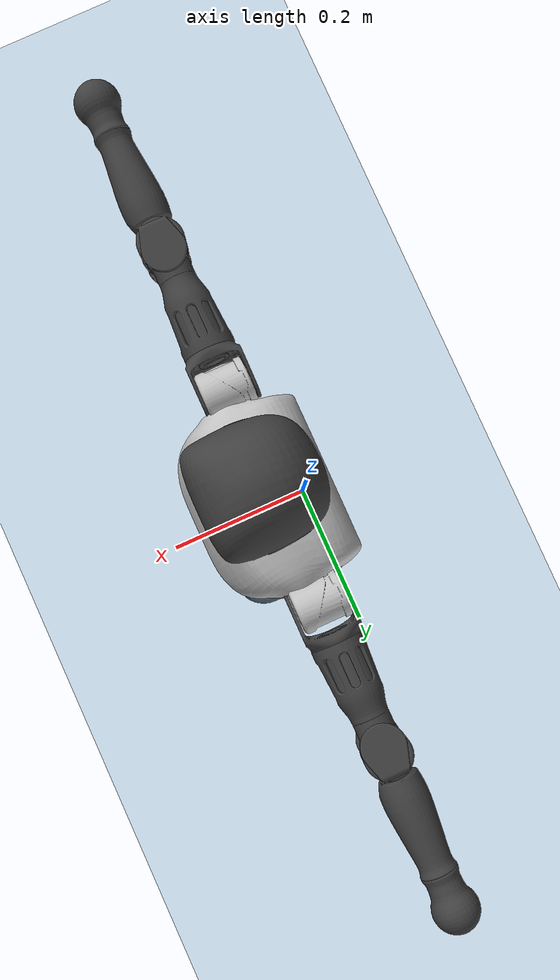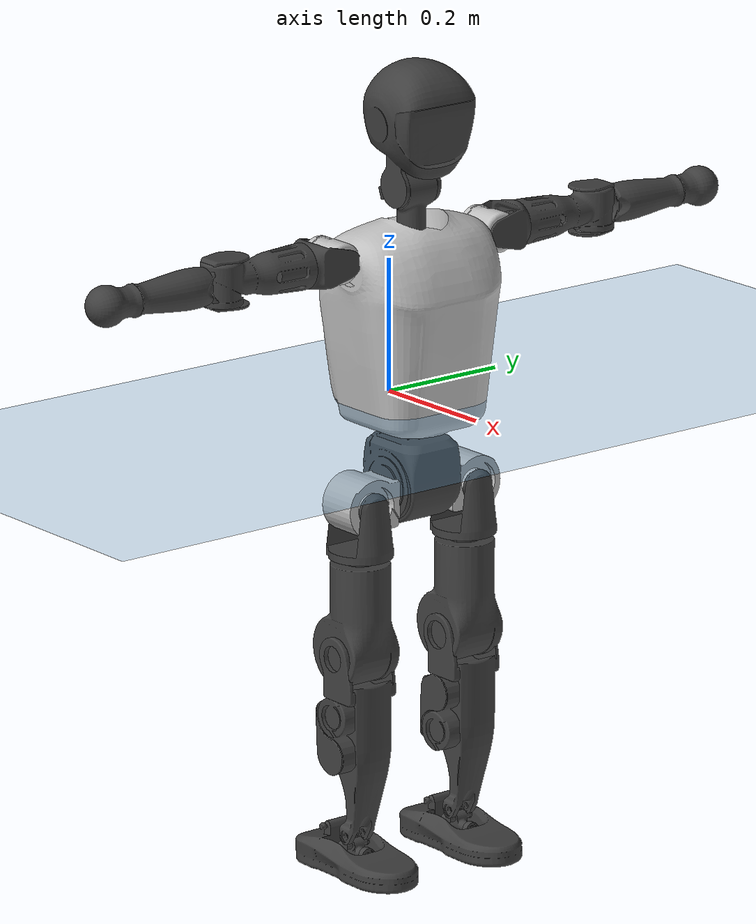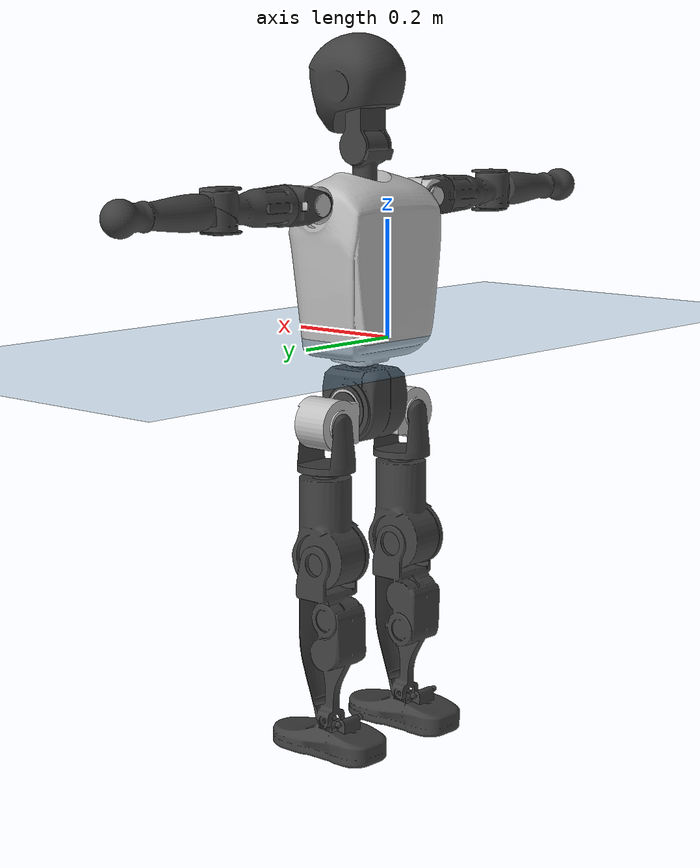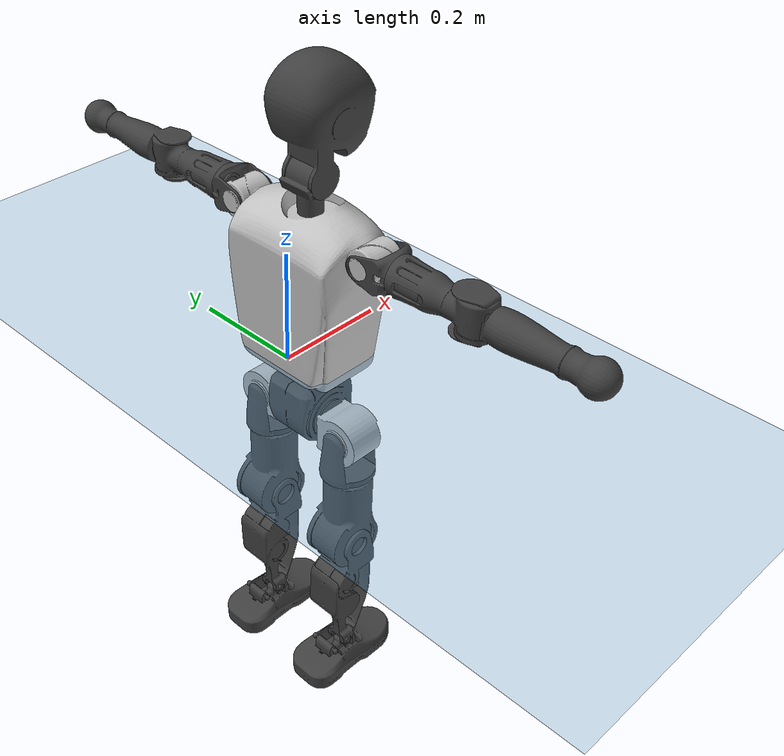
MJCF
<mujoco model="T1">
  <compiler angle="radian" assetdir="assets" balanceinertia="true" inertiafromgeom="false"/>

  <option timestep="0.005" density="1.2" viscosity="2e-05"/>

  <size nkey="1"/>

  <visual>
    <quality shadowsize="8192"/>
    <map shadowclip="0.5"/>
  </visual>

  <default>
    <default class="/">
      <joint armature="0.01" damping="0.01" frictionloss="0.1"/>
      <geom contype="0" conaffinity="0" group="1" solref="-1000 -80"/>
      <site size="0.01 0.005 0.005" group="5"/>
      <general forcelimited="true" biastype="affine" gainprm="25" biasprm="0 -25 -0.6"/>
      <default class="t1">
        <geom rgba="0.25 0.25 0.25 1"/>
        <default class="visual">
          <geom type="mesh" group="2"/>
        </default>
        <default class="collision">
          <geom group="3"/>
        </default>
        <default class="foot">
          <geom size="0.1115 0.05 0.015" type="box" condim="6" group="4" priority="1" solimp="0.015 1 0.015"/>
        </default>
        <default class="reward_collision_sphere">
          <geom group="5" rgba="1 0 0 1"/>
        </default>
      </default>
    </default>
  </default>

  <asset>
    <texture type="skybox" colorspace="auto" name="//unnamed_texture_0" builtin="gradient" rgb1="0.95 0.95 0.95" rgb2="0.95 0.95 0.95" width="100" height="600"/>
    <texture type="2d" colorspace="auto" name="texplane" builtin="checker" rgb1="0.345 0.575 0.748" rgb2="0.345 0.575 0.748" markrgb="1 1 1" width="512" height="512"/>
    <material name="MatPlane" class="/" texture="texplane" texuniform="true" texrepeat="2 2" specular="0.9"/>
    <mesh name="Trunk" class="/" file="Trunk.stl"/>
    <mesh name="H1" class="/" file="H1.stl"/>
    <mesh name="H2" class="/" file="H2.stl"/>
    <mesh name="AL1" class="/" file="AL1.stl"/>
    <mesh name="AL2" class="/" file="AL2.stl"/>
    <mesh name="AL3" class="/" file="AL3.stl"/>
    <mesh name="left_hand_link" class="/" file="left_hand_link.stl"/>
    <mesh name="AR1" class="/" file="AR1.stl"/>
    <mesh name="AR2" class="/" file="AR2.stl"/>
    <mesh name="AR3" class="/" file="AR3.stl"/>
    <mesh name="right_hand_link" class="/" file="right_hand_link.stl"/>
    <mesh name="Waist" class="/" file="Waist.stl"/>
    <mesh name="Hip_Pitch_Left" class="/" file="Hip_Pitch_Left.stl"/>
    <mesh name="Hip_Roll_Left" class="/" file="Hip_Roll_Left.stl"/>
    <mesh name="Hip_Yaw_Left" class="/" file="Hip_Yaw_Left.stl"/>
    <mesh name="Shank_Left" class="/" file="Shank_Left.stl"/>
    <mesh name="Ankle_Cross_Left" class="/" file="Ankle_Cross_Left.stl"/>
    <mesh name="left_foot_link" class="/" file="left_foot_link.stl"/>
    <mesh name="Hip_Pitch_Right" class="/" file="Hip_Pitch_Right.stl"/>
    <mesh name="Hip_Roll_Right" class="/" file="Hip_Roll_Right.stl"/>
    <mesh name="Hip_Yaw_Right" class="/" file="Hip_Yaw_Right.stl"/>
    <mesh name="Shank_Right" class="/" file="Shank_Right.stl"/>
    <mesh name="Ankle_Cross_Right" class="/" file="Ankle_Cross_Right.stl"/>
    <mesh name="right_foot_link" class="/" file="right_foot_link.stl"/>
  </asset>

  <worldbody>
    <geom name="floor" class="/" size="100 100 0.125" type="plane" group="0" material="MatPlane"/>
    <light name="toplight_shadow" class="/" pos="0 0 5" dir="0.0990148 0.0990148 -0.990148" type="directional" ambient="0.04 0.04 0.04" diffuse="0.55 0.55 0.55" specular="0.12 0.12 0.12"/>
    <light name="toplight_fill" class="/" pos="0 0 5" dir="0.0990148 0.0990148 -0.990148" type="directional" castshadow="false" ambient="0.04 0.04 0.04" diffuse="0.3 0.3 0.3" specular="0.08 0.08 0.08"/>
    <body name="trunk" childclass="t1" pos="0.000437275 0.000131643 -0.000656275" quat="1 1.1738e-05 3.93694e-07 -5.83429e-06">
      <inertial pos="0.0449378 -0.000111467 0.110462" quat="0.999959 2.39948e-05 -0.00906392 3.57029e-05" mass="9.47564" diaginertia="0.0357682 0.0494036 0.0739081"/>
      <joint name="//unnamed_joint_0" type="free" armature="0" damping="0" frictionloss="0"/>
      <geom name="//unnamed_geom_1" class="visual" rgba="0.76 0.76 0.76 1" mesh="Trunk"/>
      <geom name="//unnamed_geom_2" class="collision" size="0.0698777 0.0931702 0.139755" pos="0.0496508 0 0.126659" type="box"/>
      <geom name="//unnamed_geom_3" class="reward_collision_sphere" size="0.107146" pos="0.0496508 0 0.105549"/>
      <geom name="//unnamed_geom_4" class="reward_collision_sphere" size="0.0139755" pos="0.0496508 0.0775288 0"/>
      <geom name="//unnamed_geom_5" class="reward_collision_sphere" size="0.0139755" pos="0.0496508 -0.0775288 0"/>
      <geom name="//unnamed_geom_6" class="reward_collision_sphere" size="0.0139755" pos="0.0496508 0.0975951 0.189988"/>
      <geom name="//unnamed_geom_7" class="reward_collision_sphere" size="0.0139755" pos="0.0496508 -0.0975951 0.189988"/>
      <site name="imu" pos="-0.00327878 -0.000978352 0.00141625" size="0.00931702"/>
      <camera name="track" pos="0 -1.82421 0" quat="0.707107 0.707107 0 0" mode="trackcom"/>
      <camera name="ego_camera" pos="0.100957 0 0.443306" quat="-0.5 -0.5 0.5 0.5"/>
      <body name="H1" pos="0.0509834 -0.000350904 0.257047" quat="1 2.15429e-05 -2.76015e-05 7.14739e-07">
        <inertial pos="-0.000872372 -0.00197685 0.0599574" quat="0.762386 -0.015986 -0.00184095 0.646922" mass="0.360767" diaginertia="9.50776e-05 0.000141163 0.000198719"/>
        <joint name="AAHead_yaw" pos="0 0 0" axis="0.000102315 -0.0019173 0.999998" stiffness="7.98744e-06" range="-1.55896 1.58034" armature="0.00950689" damping="0.00553207" frictionloss="0.0978564"/>
        <geom name="//unnamed_geom_8" class="visual" mesh="H1"/>
        <body name="H2" pos="-0.00050306 -0.000165843 0.0643891" quat="1 3.35561e-07 4.032e-07 -1.17366e-06">
          <inertial pos="0.00606777 0.00105333 0.104147" quat="0.988793 0.10512 -0.0739768 -0.0759372" mass="0.511295" diaginertia="0.000799317 0.00121019 0.00227291"/>
          <joint name="Head_pitch" pos="0 0 0" axis="-0.00189543 -0.999997 -0.00138416" range="-1.21756 0.348758" armature="0.00910658" damping="0.00680736" frictionloss="0.0919105"/>
          <geom name="//unnamed_geom_9" class="visual" mesh="H2"/>
          <geom name="//unnamed_geom_10" class="collision" size="0.0745362" pos="0.00827513 0 0.116104"/>
          <geom name="//unnamed_geom_11" class="reward_collision_sphere" size="0.0838532" pos="0.0165503 0 0.105549"/>
        </body>
      </body>
      <body name="AL1" pos="0.0487489 0.0980445 0.231278" quat="1 6.27246e-06 0.000440908 -5.59411e-06">
        <inertial pos="0.00022521 0.0408682 0.000216358" quat="0.506872 0.496932 -0.502196 0.493902" mass="0.426782" diaginertia="0.000532002 0.000809466 0.000383089"/>
        <joint name="Left_Shoulder_Pitch" pos="0 0 0" axis="0.00241399 0.999994 0.00244486" range="-3.30761 1.20981" armature="0.00935956" damping="0.00796699" frictionloss="0.0910719"/>
        <geom name="//unnamed_geom_12" class="visual" rgba="0.76 0.76 0.76 1" mesh="AL1"/>
        <body name="AL2" pos="0.00117603 0.0436088 0.000768952" quat="1 1.91138e-05 -5.53201e-05 4.05298e-05">
          <inertial pos="0.00264332 0.0354371 -9.40203e-05" quat="0.48809 0.512266 -0.488066 0.511022" mass="0.128823" diaginertia="0.000154958 0.000218904 0.000229852"/>
          <joint name="Left_Shoulder_Roll" pos="0 0 0" axis="-0.999998 -0.0010593 0.00151945" range="-1.55803 1.72228" armature="0.00926633" damping="0.00444531" frictionloss="0.0925471"/>
          <geom name="//unnamed_geom_13" class="visual" mesh="AL2"/>
          <body name="AL3" pos="0.000468742 0.0553201 -0.00020883" quat="1 -0.000187502 -3.77784e-05 -8.86084e-05">
            <inertial pos="-0.000990184 0.0775295 -0.000140894" quat="0.70672 0.70749 -0.00108012 -0.00197551" mass="0.816372" diaginertia="0.00493613 0.00804182 0.000810011"/>
            <joint name="Left_Elbow_Pitch" pos="0 0 0" axis="0.00136947 -0.999999 0.000512689" range="-2.27818 2.26955" armature="0.00969087" damping="0.00982059" frictionloss="0.0908801"/>
            <geom name="//unnamed_geom_14" class="visual" mesh="AL3"/>
            <geom name="//unnamed_geom_15" class="collision" size="0.0279511 0.0698777" pos="0 0.0456052 0" quat="0.707105 0.707108 0 0" type="cylinder"/>
            <geom name="//unnamed_geom_16" class="reward_collision_sphere" size="0.0335413"/>
            <body name="left_hand_link" pos="0.00118243 0.134277 5.22521e-05" quat="1 3.66616e-06 2.78941e-05 -2.73163e-05">
              <inertial pos="-0.000104979 0.10082 -0.000429263" quat="0.706848 0.707353 0.00404268 -0.000872328" mass="0.263258" diaginertia="0.0031435 0.00514128 0.000280906"/>
              <joint name="Left_Elbow_Yaw" pos="0 0 0" axis="-0.00411548 -0.000440074 0.999991" range="-2.45353 0.01004" armature="0.00928004" damping="0.0107636" frictionloss="0.0921809"/>
              <geom name="//unnamed_geom_17" class="visual" mesh="left_hand_link"/>
              <geom name="//unnamed_geom_18" class="collision" size="0.0279511 0.0815239" pos="0 0.118573 0" quat="0.707105 0.707108 0 0" type="cylinder"/>
              <geom name="//unnamed_geom_19" class="reward_collision_sphere" size="0.0465851"/>
              <geom name="//unnamed_geom_20" class="reward_collision_sphere" size="0.0326096" pos="0 0.100331 0"/>
              <geom name="//unnamed_geom_21" class="reward_collision_sphere" size="0.0326096" pos="0 0.196102 0"/>
            </body>
          </body>
        </body>
      </body>
      <body name="AR1" pos="0.0462036 -0.0965308 0.231357" quat="1 -0.000173308 0.000376392 -0.000182966">
        <inertial pos="-0.00132932 -0.0411666 0.000528418" quat="0.502839 0.496944 -0.503923 0.496247" mass="0.433046" diaginertia="0.000535323 0.000820826 0.000387376"/>
        <joint name="Right_Shoulder_Pitch" pos="0 0 0" axis="-5.19619e-06 -1 1.61783e-05" range="-1.23646 3.31552" armature="0.00921404" damping="0.00445201" frictionloss="0.0906914"/>
        <geom name="//unnamed_geom_22" class="visual" rgba="0.76 0.76 0.76 1" mesh="AR1"/>
        <body name="AR2" pos="-0.000710828 -0.0412412 -0.000239197" quat="1 -0.000257482 0.000362744 0.000369487">
          <inertial pos="0.00402533 -0.0344925 0.00130246" quat="0.510746 0.485042 -0.51316 0.490448" mass="0.131934" diaginertia="0.000157855 0.000221762 0.000231417"/>
          <joint name="Right_Shoulder_Roll" pos="0 0 0" axis="-0.999996 0.00234272 -0.00184242" stiffness="0.00339552" range="-1.73549 1.57694" armature="0.0092047" damping="0.00577545" frictionloss="0.0915824"/>
          <geom name="//unnamed_geom_23" class="visual" mesh="AR2"/>
          <body name="AR3" pos="-0.000321744 -0.0551899 -0.000174715" quat="1 -7.9969e-06 5.69191e-05 0.000211402">
            <inertial pos="0.000489972 -0.0781843 7.34645e-05" quat="0.70772 0.706492 0.0006532 -0.000355815" mass="0.832914" diaginertia="0.00501948 0.00816087 0.000824612"/>
            <joint name="Right_Elbow_Pitch" pos="0 0 0" axis="0.000599842 1 0.000211487" stiffness="0.00217976" range="-2.28133 2.2647" armature="0.0092714" damping="0.00911564" frictionloss="0.0978494"/>
            <geom name="//unnamed_geom_24" class="visual" mesh="AR3"/>
            <geom name="//unnamed_geom_25" class="collision" size="0.0279511 0.0698777" pos="0 -0.0456052 0" quat="0.707105 0.707108 0 0" type="cylinder"/>
            <geom name="//unnamed_geom_26" class="reward_collision_sphere" size="0.0335413"/>
            <body name="right_hand_link" pos="0.000409484 -0.133434 0.000239824" quat="1 3.05854e-05 -0.000111178 -7.48821e-05">
              <inertial pos="-0.000268052 -0.0998231 0.000447564" quat="0.706461 0.707752 5.19863e-05 0.0001847" mass="0.268309" diaginertia="0.00318967 0.005172 0.000286259"/>
              <joint name="Right_Elbow_Yaw" pos="0 0 0" axis="-0.000987331 0.000211316 0.999999" range="-0.0030151 2.44002" armature="0.00960136" damping="0.005178" frictionloss="0.0890151"/>
              <geom name="//unnamed_geom_27" class="visual" mesh="right_hand_link"/>
              <geom name="//unnamed_geom_28" class="collision" size="0.0279511 0.0815239" pos="0 -0.118573 0" quat="0.707105 0.707108 0 0" type="cylinder"/>
              <geom name="//unnamed_geom_29" class="reward_collision_sphere" size="0.0465851"/>
              <geom name="//unnamed_geom_30" class="reward_collision_sphere" size="0.0326096" pos="0 -0.100331 0"/>
              <geom name="//unnamed_geom_31" class="reward_collision_sphere" size="0.0326096" pos="0 -0.196102 0"/>
            </body>
          </body>
        </body>
      </body>
      <body name="Waist" pos="0.0516435 -1.43135e-05 -0.121343" quat="1 0.00018383 -5.89789e-05 -0.000152281">
        <inertial pos="0.00144511 -0.00124348 0.00865457" quat="0.983818 -0.00102145 -0.179167 0.000409556" mass="2.08027" diaginertia="0.0020846 0.0033366 0.0061721"/>
        <joint name="Waist" pos="0 0 0" axis="-0.000814477 -0.00457681 0.999989" range="-1.57133 1.57979" armature="0.00936979" damping="0.0100281" frictionloss="0.0939877"/>
        <geom name="//unnamed_geom_32" class="visual" mesh="Waist"/>
        <body name="Hip_Pitch_Left" pos="0.000511688 0.0968534 0.000736136" quat="1 -0.000102001 -0.000272619 -0.000291166">
          <inertial pos="0.00110688 -0.0072071 -0.0193805" quat="0.97511 0.221232 0.0146425 0.00155301" mass="0.815221" diaginertia="0.00069173 0.000904856 0.00162019"/>
          <joint name="Left_Hip_Pitch" pos="0 0 0" axis="0.00585164 0.999983 -0.000436403" range="-1.80951 1.56135" armature="0.00890617" damping="0.00718977" frictionloss="0.0917551"/>
          <geom name="//unnamed_geom_33" class="visual" rgba="0.76 0.76 0.76 1" mesh="Hip_Pitch_Left"/>
          <body name="Hip_Roll_Left" pos="0.00097009 0.000719073 -0.0231166" quat="1 -0.000160461 0.000125854 -9.96156e-05">
            <inertial pos="0.00113761 -0.000782801 -0.0559453" quat="0.70701 -0.00606506 -0.00629457 0.707149" mass="0.314179" diaginertia="0.000682236 0.000958871 0.000688141"/>
            <joint name="Left_Hip_Roll" pos="0 0 0" axis="-0.999984 0.00107633 -0.00559819" range="-1.57899 0.185404" armature="0.00951878" damping="0.00312247" frictionloss="0.0905191"/>
            <geom name="//unnamed_geom_34" class="visual" mesh="Hip_Roll_Left"/>
            <geom name="//unnamed_geom_35" class="reward_collision_sphere" size="0.0512436"/>
            <body name="Hip_Yaw_Left" pos="-0.000398816 0.000585422 -0.0876673" quat="1 0.000236258 9.96908e-05 0.000385407">
              <inertial pos="-0.00520526 -0.000142471 -0.0936073" quat="0.696717 -0.0343713 -0.0317325 0.715819" mass="1.76037" diaginertia="0.0100699 0.0157933 0.00337246"/>
              <joint name="Left_Hip_Yaw" pos="0 0 0" axis="0.000566355 -0.0024148 -0.999997" range="-1.0221 0.999798" armature="0.00926646" damping="0.00778775" frictionloss="0.0933773"/>
              <geom name="//unnamed_geom_36" class="visual" mesh="Hip_Yaw_Left"/>
              <geom name="//unnamed_geom_37" class="collision" size="0.0465851 0.0745362" type="cylinder"/>
              <body name="Shank_Left" pos="-0.0119182 -3.70776e-06 -0.144206" quat="1 -9.4414e-07 -8.23341e-06 -1.00275e-05">
                <inertial pos="-0.00436485 0.000804224 -0.13151" quat="0.997363 -0.00174668 -0.0260825 0.0677032" mass="1.40538" diaginertia="0.0134025 0.0217339 0.00246311"/>
                <joint name="Left_Knee_Pitch" pos="0 0 0" axis="0.00422053 0.99999 0.00127906" range="-0.000375993 2.35761" armature="0.00892331" damping="0.0119777" frictionloss="0.0946753"/>
                <geom name="//unnamed_geom_38" class="visual" mesh="Shank_Left"/>
                <geom name="//unnamed_geom_39" class="collision" size="0.0465851 0.0698777" pos="0 0 -0.126659" type="cylinder"/>
                <geom name="//unnamed_geom_40" class="reward_collision_sphere" size="0.0605606"/>
                <body name="Ankle_Cross_Left" pos="-0.000542033 -0.000117399 -0.29468" quat="1 0.000314719 -0.000115536 0.000377316">
                  <inertial pos="-0.00387279 0.000754561 -0.00932737" quat="0.443131 0.551114 0.551684 0.442213" mass="0.0593247" diaginertia="1.14001e-05 1.62162e-05 1.47977e-05"/>
                  <joint name="Left_Ankle_Pitch" pos="0 0 0" axis="-1.8447e-05 1 -6.61962e-06" range="-0.872398 0.347361" armature="0.00976236" damping="0.00758296" frictionloss="0.0917379"/>
                  <geom name="//unnamed_geom_41" class="visual" mesh="Ankle_Cross_Left"/>
                  <body name="left_foot_link" pos="0.00031056 0.000574568 -0.0126331" quat="1 -0.000259622 -0.000232451 0.00029686">
                    <inertial pos="0.000453024 0.000991966 -0.0100165" quat="0.000515382 0.620676 -0.000774151 0.784067" mass="0.557706" diaginertia="0.00106696 0.0015191 0.00289312"/>
                    <joint name="Left_Ankle_Roll" pos="0 0 0" axis="-0.99997 -0.00233479 0.00738397" range="-0.439289 0.422987" armature="0.00927391" damping="0.00985438" frictionloss="0.0912521"/>
                    <geom name="//unnamed_geom_42" class="visual" mesh="left_foot_link"/>
                    <geom name="left_foot" class="foot" size="0.100988 0.0477531 0.0137089" pos="0.00827513 0 -0.0158323"/>
                    <geom name="//unnamed_geom_44" class="reward_collision_sphere" size="0.0484485" pos="0.00827513 0 -0.0158323"/>
                    <geom name="//unnamed_geom_45" class="reward_collision_sphere" size="0.0279511" pos="0.0786137 -0.0209784 -0.0158323"/>
                    <geom name="//unnamed_geom_46" class="reward_collision_sphere" size="0.0279511" pos="-0.0579259 -0.0209784 -0.0158323"/>
                    <site name="left_foot" class="foot" pos="0.00827513 0 -0.0158323" size="0.00931702"/>
                  </body>
                </body>
              </body>
            </body>
          </body>
        </body>
        <body name="Hip_Pitch_Right" pos="0.000617526 -0.0958613 -0.000932888" quat="1 1.02948e-05 -0.00018344 -7.23212e-05">
          <inertial pos="-1.43302e-05 0.00688481 -0.0187746" quat="0.973663 -0.227504 0.0143347 -0.0042009" mass="0.824045" diaginertia="0.000695157 0.000915049 0.0016218"/>
          <joint name="Right_Hip_Pitch" pos="0 0 0" axis="0.00124005 -0.999999 -3.46046e-05" range="-1.57985 1.81691" armature="0.00950351" damping="0.00418476" frictionloss="0.0909203"/>
          <geom name="//unnamed_geom_47" class="visual" rgba="0.76 0.76 0.76 1" mesh="Hip_Pitch_Right"/>
          <body name="Hip_Roll_Right" pos="2.34377e-05 0.000101123 -0.0221363" quat="1 -0.000194715 0.000193298 3.34873e-05">
            <inertial pos="0.00194118 -0.000122513 -0.0573704" quat="0.707478 -0.00570822 -0.00538436 0.706692" mass="0.307889" diaginertia="0.000677657 0.000952193 0.000673363"/>
            <joint name="Right_Hip_Roll" pos="0 0 0" axis="-0.999997 0.00240682 -0.000316969" stiffness="0.000557239" range="-0.210513 1.56507" armature="0.0094609" damping="0.00607897" frictionloss="0.0894512"/>
            <geom name="//unnamed_geom_48" class="visual" mesh="Hip_Roll_Right"/>
            <geom name="//unnamed_geom_49" class="reward_collision_sphere" size="0.0512436"/>
            <body name="Hip_Yaw_Right" pos="-0.000643861 -0.000443959 -0.0866708" quat="1 2.21926e-05 4.97092e-05 6.24102e-05">
              <inertial pos="-0.00573558 -0.000542207 -0.095164" quat="0.714114 -0.0316418 -0.0338525 0.698494" mass="1.76271" diaginertia="0.0100886 0.0159385 0.00343681"/>
              <joint name="Right_Hip_Yaw" pos="0 0 0" axis="0.00379099 -0.00181338 -0.999991" stiffness="0.0017772" range="-1.00714 0.997751" armature="0.00950605" damping="0.0120081" frictionloss="0.0939571"/>
              <geom name="//unnamed_geom_50" class="visual" mesh="Hip_Yaw_Right"/>
              <geom name="//unnamed_geom_51" class="collision" size="0.0465851 0.0745362" type="cylinder"/>
              <body name="Shank_Right" pos="-0.0115215 -0.000623694 -0.142475" quat="1 -2.2331e-05 3.23971e-05 -2.47412e-05">
                <inertial pos="-0.00523825 0.000219046 -0.129374" quat="0.999318 -0.00184054 -0.0244046 -0.027645" mass="1.45027" diaginertia="0.0137472 0.0221518 0.0025817"/>
                <joint name="Right_Knee_Pitch" pos="0 0 0" axis="0.0021139 -0.999996 0.00188538" range="-2.34384 -0.00479552" armature="0.0091827" damping="0.00637621" frictionloss="0.0915975"/>
                <geom name="//unnamed_geom_52" class="visual" mesh="Shank_Right"/>
                <geom name="//unnamed_geom_53" class="collision" size="0.0465851 0.0698777" pos="0 0 -0.126659" type="cylinder"/>
                <geom name="//unnamed_geom_54" class="reward_collision_sphere" size="0.0605606"/>
                <body name="Ankle_Cross_Right" pos="0.00084063 -0.000250158 -0.295267" quat="1 -6.14493e-05 -6.44419e-05 -4.95796e-05">
                  <inertial pos="-0.00254992 -0.00065358 -0.00844621" quat="0.443062 0.551252 0.551013 0.442947" mass="0.0594936" diaginertia="1.12335e-05 1.63174e-05 1.48292e-05"/>
                  <joint name="Right_Ankle_Pitch" pos="0 0 0" axis="-0.000358538 -1 -0.000879283" range="-0.368039 0.880621" armature="0.00936285" damping="0.00174595" frictionloss="0.0931465"/>
                  <geom name="//unnamed_geom_55" class="visual" mesh="Ankle_Cross_Right"/>
                  <body name="right_foot_link" pos="-0.000558323 -0.00119427 -0.0103485" quat="1 -5.66227e-05 1.13628e-05 2.37564e-05">
                    <inertial pos="6.02702e-06 -0.000271093 -0.0104609" quat="7.24115e-05 0.620348 0.000667657 0.784326" mass="0.551486" diaginertia="0.00103465 0.00148523 0.0028053"/>
                    <joint name="Right_Ankle_Roll" pos="0 0 0" axis="-0.999999 0.00105803 -0.00108273" range="-0.43099 0.447072" armature="0.00878604" damping="0.000801743" frictionloss="0.0897078"/>
                    <geom name="//unnamed_geom_56" class="visual" mesh="right_foot_link"/>
                    <geom name="right_foot" class="foot" size="0.101216 0.0474035 0.0140271" pos="0.00827513 0 -0.0158323"/>
                    <geom name="//unnamed_geom_58" class="reward_collision_sphere" size="0.0372681"/>
                    <geom name="//unnamed_geom_59" class="reward_collision_sphere" size="0.0279511" pos="0.00827513 0 -0.0158323"/>
                    <geom name="//unnamed_geom_60" class="reward_collision_sphere" size="0.0279511" pos="0.0786137 0.0209784 -0.0158323"/>
                    <geom name="//unnamed_geom_61" class="reward_collision_sphere" size="0.0279511" pos="-0.0579259 0.0209784 -0.0158323"/>
                    <site name="right_foot" class="foot" pos="0.00827513 0 -0.0158323" size="0.00931702"/>
                  </body>
                </body>
              </body>
            </body>
          </body>
        </body>
      </body>
    </body>
  </worldbody>

  <contact>
    <pair class="/" geom1="floor" geom2="left_foot" name="//unnamed_contact_0"/>
    <pair class="/" geom1="floor" geom2="right_foot" name="//unnamed_contact_1"/>
  </contact>

  <actuator>
    <general name="AAHead_yaw" class="/" joint="AAHead_yaw" forcerange="-6.51461 6.51461" gainprm="23.6247" biasprm="0 -23.6247 -0.535328"/>
    <general name="Head_pitch" class="/" joint="Head_pitch" forcerange="-6.49479 6.49479" gainprm="23.6247" biasprm="0 -23.6247 -0.535328"/>
    <general name="Left_Shoulder_Pitch" class="/" joint="Left_Shoulder_Pitch" forcerange="-16.0628 16.0628" gainprm="23.6247" biasprm="0 -23.6247 -0.535328"/>
    <general name="Left_Shoulder_Roll" class="/" joint="Left_Shoulder_Roll" forcerange="-16.6716 16.6716" gainprm="23.6247" biasprm="0 -23.6247 -0.535328"/>
    <general name="Left_Elbow_Pitch" class="/" joint="Left_Elbow_Pitch" forcerange="-16.3031 16.3031" gainprm="23.6247" biasprm="0 -23.6247 -0.535328"/>
    <general name="Left_Elbow_Yaw" class="/" joint="Left_Elbow_Yaw" forcerange="-16.7651 16.7651" gainprm="23.6247" biasprm="0 -23.6247 -0.535328"/>
    <general name="Right_Shoulder_Pitch" class="/" joint="Right_Shoulder_Pitch" forcerange="-16.6136 16.6136" gainprm="23.6247" biasprm="0 -23.6247 -0.535328"/>
    <general name="Right_Shoulder_Roll" class="/" joint="Right_Shoulder_Roll" forcerange="-16.3188 16.3188" gainprm="23.6247" biasprm="0 -23.6247 -0.535328"/>
    <general name="Right_Elbow_Pitch" class="/" joint="Right_Elbow_Pitch" forcerange="-17.1369 17.1369" gainprm="23.6247" biasprm="0 -23.6247 -0.535328"/>
    <general name="Right_Elbow_Yaw" class="/" joint="Right_Elbow_Yaw" forcerange="-16.5803 16.5803" gainprm="23.6247" biasprm="0 -23.6247 -0.535328"/>
    <general name="Waist" class="/" joint="Waist" forcerange="-28.4959 28.4959" gainprm="23.6247" biasprm="0 -23.6247 -0.535328"/>
    <general name="Left_Hip_Pitch" class="/" joint="Left_Hip_Pitch" forcerange="-42.2178 42.2178" gainprm="23.6247" biasprm="0 -23.6247 -0.535328"/>
    <general name="Left_Hip_Roll" class="/" joint="Left_Hip_Roll" forcerange="-27.5595 27.5595" gainprm="23.6247" biasprm="0 -23.6247 -0.535328"/>
    <general name="Left_Hip_Yaw" class="/" joint="Left_Hip_Yaw" forcerange="-28.9278 28.9278" gainprm="23.6247" biasprm="0 -23.6247 -0.535328"/>
    <general name="Left_Knee_Pitch" class="/" joint="Left_Knee_Pitch" forcerange="-55.2882 55.2882" gainprm="23.6247" biasprm="0 -23.6247 -0.535328"/>
    <general name="Left_Ankle_Pitch" class="/" joint="Left_Ankle_Pitch" forcerange="-18.6325 18.6325" gainprm="23.6247" biasprm="0 -23.6247 -0.535328"/>
    <general name="Left_Ankle_Roll" class="/" joint="Left_Ankle_Roll" forcerange="-13.9435 13.9435" gainprm="23.6247" biasprm="0 -23.6247 -0.535328"/>
    <general name="Right_Hip_Pitch" class="/" joint="Right_Hip_Pitch" forcerange="-42.0284 42.0284" gainprm="23.6247" biasprm="0 -23.6247 -0.535328"/>
    <general name="Right_Hip_Roll" class="/" joint="Right_Hip_Roll" forcerange="-28.8148 28.8148" gainprm="23.6247" biasprm="0 -23.6247 -0.535328"/>
    <general name="Right_Hip_Yaw" class="/" joint="Right_Hip_Yaw" forcerange="-27.844 27.844" gainprm="23.6247" biasprm="0 -23.6247 -0.535328"/>
    <general name="Right_Knee_Pitch" class="/" joint="Right_Knee_Pitch" forcerange="-54.043 54.043" gainprm="23.6247" biasprm="0 -23.6247 -0.535328"/>
    <general name="Right_Ankle_Pitch" class="/" joint="Right_Ankle_Pitch" forcerange="-18.1277 18.1277" gainprm="23.6247" biasprm="0 -23.6247 -0.535328"/>
    <general name="Right_Ankle_Roll" class="/" joint="Right_Ankle_Roll" forcerange="-13.7519 13.7519" gainprm="23.6247" biasprm="0 -23.6247 -0.535328"/>
  </actuator>

  <sensor>
    <gyro site="imu" name="imu_angular_velocity"/>
    <velocimeter site="imu" name="imu_linear_velocity"/>
    <framelinvel objtype="site" objname="left_foot" name="left_foot_global_linear_velocity"/>
    <framelinvel objtype="site" objname="right_foot" name="right_foot_global_linear_velocity"/>
  </sensor>

  <keyframe>
    <key name="home" qpos="0 0 0.6385 1 0 0 0 0 0 0 1.4 0 -0.4 0 -1.4 0 0.4 0 -0.4 0 0 0.8 -0.4 0 0.4 0 0 -0.8 0.4 0"/>
  </keyframe>
</mujoco>
